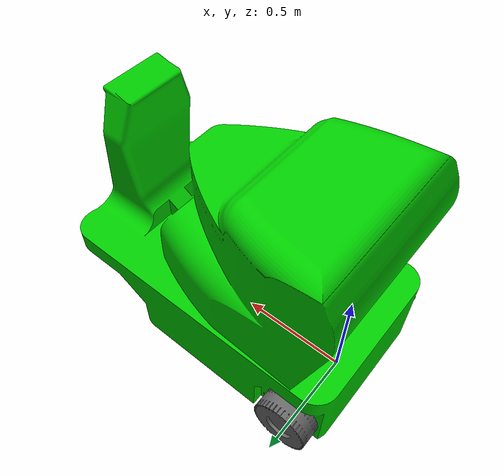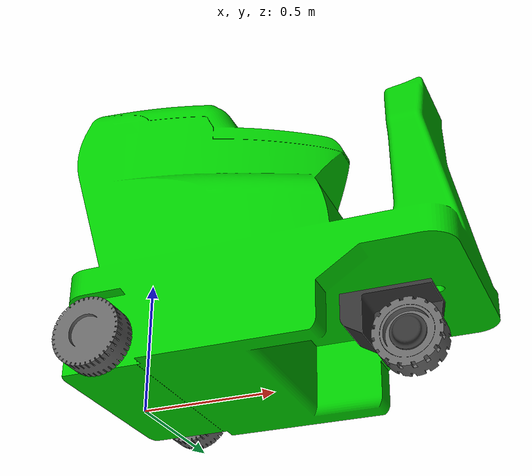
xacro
<?xml version="1.0"?>
<robot name="hakuroukun" xmlns:xacro="http://www.ros.org/wiki/xacro" >

    <!-- Import all robot parts which were xacroed -->
    <xacro:include filename="$(find hakuroukun_description)/urdf/hakuroukun_inertia_box.xacro" />
    <!-- Import Rviz colors -->
    <xacro:include filename="$(find hakuroukun_description)/urdf/colors.xacro" />
    <!-- Import robot properties -->
    <xacro:include filename="$(find hakuroukun_description)/urdf/properties.xacro" />
    <!-- Import wheels and actuator properties -->
    <xacro:include filename="$(find hakuroukun_description)/urdf/actuators_wheels.xacro" />

    <xacro:property name="robot_namespace" value="hakuroukun"/>

    <!-- Base link-->
    <link name="base_link">
    </link>
    <gazebo reference="base_link">
        <material>Gazebo/Red</material>
    </gazebo>

    <!-- rear center-->
    <link name="rear_axis_center">
        <visual>
        <geometry>
            <box size="0.01 0.01 0.01"/>
        </geometry>
        <material name="Red"/>
        </visual>
    </link>
    <gazebo reference="rear_axis_center">
        <material>Gazebo/Red</material>
    </gazebo>
    <joint name="base_link_to_rear_axis_center" type="fixed">
        <parent link="base_link" />
        <child link="rear_axis_center" />
        <origin xyz="0.0 0.0 ${radius}" />
    </joint>

    <!-- Robot Frame-->
    <link name="robot_frame">
        <visual>
            <geometry>
                <mesh filename="package://hakuroukun_description/meshes/base_link.stl" scale="0.001 0.001 0.001"/>
            </geometry>
            <origin rpy="0 0 0" xyz="0 0 0" />
            <material name="Green"/>
        </visual>

        <collision>
            <geometry>
                <mesh filename="package://hakuroukun_description/meshes/base_link.stl" scale="0.001 0.001 0.001"/>
            </geometry>
            <origin rpy="0 0 0" xyz="0 0 0"/>
        </collision>

        <xacro:inertial_box mass="${robot_mass}" x="${robot_length}" y="${robot_width}" z="${robot_height}" />
    </link>

    <joint name="base_link_to_robot_frame" type="fixed">
        <parent link="rear_axis_center" />
        <child link="robot_frame" />
        <origin xyz="${base_link_to_robot_frame_X} ${base_link_to_robot_frame_Y} ${base_link_to_robot_frame_Z}" />
    </joint>

<!-- ///////////////////////////////////////// STEERING //////////////////////////////////// -->
    <xacro:steering_continuous name="front_wheel_shaft"
        parent_link="rear_axis_center"
        mass="${mass_steering_unit}"
        size_x="${steering_X}"  size_y="${steering_Y}" size_z="${steering_Z}"
        x="${rear_axis_center_to_steering_center}" y="-0.01" z="0.0"
        file_name="package://hakuroukun_description/meshes/steering.stl" />

<!-- ///////////////////////////////////////// WHEELS //////////////////////////////////// -->

    <xacro:wheel_front name="front_wheel"
        parent_link="front_wheel_shaft"
        mass="${mass_wheel}"
        radius="${radius}"
        thickness="${thickness}"
        x="0.0" y="0.0" z="0.0"
        mu1="200" mu2="100"
        kp="10000000" kd="40"
        file_name="package://hakuroukun_description/meshes/front_wheel.stl" />

    <xacro:wheel name="rear_left_wheel"
        parent_link="rear_axis_center"
        mass="${mass_wheel}"
        radius="${radius}"
        thickness="${thickness}"
        x="0.0" y="0.4" z="0.0"
        mu1="200" mu2="100"
        kp="10000000" kd="40"
        file_name="package://hakuroukun_description/meshes/rear_left_wheel.stl" />

    <xacro:wheel name="rear_right_wheel"
        parent_link="rear_axis_center"
        mass="${mass_wheel}"
        radius="${radius}"
        thickness="${thickness}"
        x="0.0" y="-0.4" z="0.0"
        mu1="200" mu2="100"
        kp="10000000" kd="40"
        file_name="package://hakuroukun_description/meshes/rear_right_wheel.stl" />

<!-- ////////////////////////////// GAZEBO ROS PLUGIN //////////////////////////////////// -->

    <gazebo>
        <plugin name="gazebo_ros_control" filename="libgazebo_ros_control.so">
            <robotNamespace>hakuroukun</robotNamespace>
            <robotSimType>gazebo_ros_control/DefaultRobotHWSim</robotSimType>
            <legacyModeNS>false</legacyModeNS>
        </plugin>
    </gazebo>

</robot>

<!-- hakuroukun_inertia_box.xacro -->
<?xacro version="1.0"?>
<robot xmlns:xacro="http://www.ros.org/wiki/xacro" name="hakuroukun">

<!-- //////////////////////////// INERTIA DEFINITIONS //////////////////////////// -->
<!-- based on the inertia list from wikipedia -->
  <xacro:macro name="inertial_cylinder_x" params="mass radius height">
    <inertial>
      <mass value="${mass}" />
      <inertia ixx="${(mass/2)*radius*radius}" ixy="0.0" ixz="0.0" iyy="${(mass/12)*(3*radius*radius+height*height)}" iyz="0.0" izz="${(mass/12)*(3*radius*radius+height*height)}" />
    </inertial>
  </xacro:macro>

  <xacro:macro name="inertial_cylinder_y" params="mass radius height">
    <inertial>
      <mass value="${mass}" />
      <inertia ixx="${(mass/12)*(3*radius*radius+height*height)}" ixy="0.0" ixz="0.0" iyy="${(mass/2)*radius*radius}" iyz="0.0" izz="${(mass/12)*(3*radius*radius+height*height)}" />
    </inertial>
  </xacro:macro>

  <xacro:macro name="inertial_cylinder_z" params="mass radius height">
    <inertial>
      <mass value="${mass}" />
      <inertia ixx="${(mass/12)*(3*radius*radius+height*height)}" ixy="0.0" ixz="0.0" iyy="${(mass/12)*(3*radius*radius+height*height)}" iyz="0.0" izz="${(mass/2)*radius*radius}" />
    </inertial>
  </xacro:macro>

  <xacro:macro name="inertial_box" params="mass x y z">
    <inertial>
      <mass value="${mass}" />
      <inertia ixx="${(mass/12)*(y*y+z*z)}" ixy="0.0" ixz="0.0" iyy="${(mass/12)*(x*x+z*z)}" iyz="0.0" izz="${(mass/12)*(y*y+x*x)}" />
    </inertial>
  </xacro:macro>

  <!-- //////////////////////////// Robot xacros //////////////////////////// -->

  <xacro:macro name="default_box" params="parent child_name mass sizex sizey sizez ox oy oz roll pitch yaw color">
    <link name="${child_name}" >
      <visual>
        <geometry>
          <box size="${sizex} ${sizey} ${sizez}" />
        </geometry>
        <origin rpy="${roll} ${pitch} ${yaw}" />
        <material name="${color}" />
      </visual>
      <xacro:inertial_box mass="${mass}" x="${sizex}" y="${sizey}" z="${sizez}" />
    </link>
    <gazebo reference="${child_name}" >
      <material>Gazebo/${color}</material>
    </gazebo>
    <joint name="${parent}_to_${child_name}" type="fixed">
      <parent link="${parent}" />
      <child link="${child_name}" />
      <origin xyz="${ox} ${oy} ${oz}" />
    </joint>
  </xacro:macro>

  <xacro:macro name="default_zylinder_in_X" params="parent child_name mass length radius ox oy oz roll pitch yaw color">
    <link name="${child_name}" >
      <visual>
        <geometry>
          <cylinder length="${length}" radius="${radius}" />
        </geometry>
        <origin rpy="${roll} ${pitch} ${yaw}" />
        <material name="${color}" />
      </visual>
      <xacro:inertial_zylinder_x mass="${mass}" radius="${radius}" height="${length}" />
    </link>
    <gazebo reference="${child_name}" >
      <material>Gazebo/${color}</material>
    </gazebo>
    <joint name="${parent}_to_${child_name}" type="fixed">
      <parent link="${parent}" />
      <child link="${child_name}" />
      <origin xyz="${ox} ${oy} ${oz}" />
    </joint>
  </xacro:macro>

  <xacro:macro name="default_zylinder_in_Y" params="parent child_name mass length radius ox oy oz roll pitch yaw color">
    <link name="${child_name}" >
      <visual>
        <geometry>
          <cylinder length="${length}" radius="${radius}" />
        </geometry>
        <origin rpy="${roll} ${pitch} ${yaw}" />
        <material name="${color}" />
      </visual>
      <xacro:inertial_zylinder_y mass="${mass}" radius="${radius}" height="${length}" />
    </link>
    <gazebo reference="${child_name}" >
      <material>Gazebo/${color}</material>
    </gazebo>
    <joint name="${parent}_to_${child_name}" type="fixed">
      <parent link="${parent}" />
      <child link="${child_name}" />
      <origin xyz="${ox} ${oy} ${oz}" />
    </joint>
  </xacro:macro>

  <xacro:macro name="default_zylinder_in_Z" params="parent child_name mass length radius ox oy oz roll pitch yaw color">
    <link name="${child_name}" >
      <visual>
        <geometry>
          <cylinder length="${length}" radius="${radius}" />
        </geometry>
        <origin rpy="${roll} ${pitch} ${yaw}" />
        <material name="${color}" />
      </visual>
      <xacro:inertial_zylinder_z mass="${mass}" radius="${radius}" height="${length}" />
    </link>
    <gazebo reference="${child_name}" >
      <material>Gazebo/${color}</material>
    </gazebo>
    <joint name="${parent}_to_${child_name}" type="fixed">
      <parent link="${parent}" />
      <child link="${child_name}" />
      <origin xyz="${ox} ${oy} ${oz}" />
    </joint>
  </xacro:macro>

  <!-- //////////////////////////// Robot xacros with collision //////////////////////////// -->

  <xacro:macro name="default_box_with_collision" params="parent child_name mass sizex sizey sizez ox oy oz roll pitch yaw color">
    <link name="${child_name}" >
      <visual>
        <geometry>
          <box size="${sizex} ${sizey} ${sizez}" />
        </geometry>
        <origin rpy="${roll} ${pitch} ${yaw}" />
        <material name="${color}" />
      </visual>
      <collision>
        <geometry>
          <box size="${sizex} ${sizey} ${sizez}" />
        </geometry>
        <origin rpy="${roll} ${pitch} ${yaw}" />
      </collision>
      <xacro:inertial_box mass="${mass}" x="${sizex}" y="${sizey}" z="${sizez}" />
    </link>
    <gazebo reference="${child_name}" >
      <material>Gazebo/${color}</material>
    </gazebo>
    <joint name="${parent}_to_${child_name}" type="fixed">
      <parent link="${parent}" />
      <child link="${child_name}" />
      <origin xyz="${ox} ${oy} ${oz}" />
    </joint>
  </xacro:macro>

  <xacro:macro name="default_zylinder_in_X_with_collision" params="parent child_name mass length radius ox oy oz roll pitch yaw color">
    <link name="${child_name}" >
      <visual>
        <geometry>
          <cylinder length="${length}" radius="${radius}" />
        </geometry>
        <origin rpy="${roll} ${pitch} ${yaw}" />
        <material name="${color}" />
      </visual>
      <collision>
        <geometry>
          <cylinder length="${length}" radius="${radius}" />
        </geometry>
        <origin rpy="${roll} ${pitch} ${yaw}" />
      </collision>
      <xacro:inertial_zylinder_x mass="${mass}" radius="${radius}" height="${length}" />
    </link>
    <gazebo reference="${child_name}" >
      <material>Gazebo/${color}</material>
    </gazebo>
    <joint name="${parent}_to_${child_name}" type="fixed">
      <parent link="${parent}" />
      <child link="${child_name}" />
      <origin xyz="${ox} ${oy} ${oz}" />
    </joint>
  </xacro:macro>

  <xacro:macro name="default_zylinder_in_Y_with_collision" params="parent child_name mass length radius ox oy oz roll pitch yaw color">
    <link name="${child_name}" >
      <visual>
        <geometry>
          <cylinder length="${length}" radius="${radius}" />
        </geometry>
        <origin rpy="${roll} ${pitch} ${yaw}" />
        <material name="${color}" />
      </visual>
      <collision>
        <geometry>
          <cylinder length="${length}" radius="${radius}" />
        </geometry>
        <origin rpy="${roll} ${pitch} ${yaw}" />
      </collision>
      <xacro:inertial_zylinder_y mass="${mass}" radius="${radius}" height="${length}" />
    </link>
    <gazebo reference="${child_name}" >
      <material>Gazebo/${color}</material>
    </gazebo>
    <joint name="${parent}_to_${child_name}" type="fixed">
      <parent link="${parent}" />
      <child link="${child_name}" />
      <origin xyz="${ox} ${oy} ${oz}" />
    </joint>
  </xacro:macro>

  <xacro:macro name="default_zylinder_in_Z_with_collision" params="parent child_name mass length radius ox oy oz roll pitch yaw color">
    <link name="${child_name}" >
      <visual>
        <geometry>
          <cylinder length="${length}" radius="${radius}" />
        </geometry>
        <origin rpy="${roll} ${pitch} ${yaw}" />
        <material name="${color}" />
      </visual>
      <collision>
        <geometry>
          <cylinder length="${length}" radius="${radius}" />
        </geometry>
        <origin rpy="${roll} ${pitch} ${yaw}" />
      </collision>
      <xacro:inertial_zylinder_z mass="${mass}" radius="${radius}" height="${length}" />
    </link>
    <gazebo reference="${child_name}" >
      <material>Gazebo/${color}</material>
    </gazebo>
    <joint name="${parent}_to_${child_name}" type="fixed">
      <parent link="${parent}" />
      <child link="${child_name}" />
      <origin xyz="${ox} ${oy} ${oz}" />
    </joint>
  </xacro:macro>

</robot>

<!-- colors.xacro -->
<robot name="hakuroukun" xmlns:xacr="http://ros.org/wiki/xacro">

    <material name="Black">
        <color rgba="0.0 0.0 0.0 1.0"/>
    </material>

    <material name="Blue">
        <color rgba="0.0 0.0 0.8 1.0"/>
    </material>

    <material name="Green">
        <color rgba="0.0 0.8 0.0 1.0"/>
    </material>

    <material name="Yellow">
        <color rgba="1 1 0 1"/>
    </material>

    <material name="Grey">
        <color rgba="0.2 0.2 0.2 1.0"/>
    </material>

    <material name="WhiteGlow">
        <color rgba="0.75 0.75 0.75 1"/>
    </material>

    <material name="DarkGrey">
        <color rgba="0.41 0.41 0.41 1"/>
    </material>

    <material name="Orange">
        <color rgba="${255/255} ${108/255} ${10/255} 1.0"/>
    </material>

    <material name="Brown">
        <color rgba="${222/255} ${207/255} ${195/255} 1.0"/>
    </material>

    <material name="Red">
        <color rgba="0.8 0.0 0.0 1.0"/>
    </material>

    <material name="White">
        <color rgba="1.0 1.0 1.0 1.0"/>
    </material>

</robot>

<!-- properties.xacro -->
<robot name="musashi_robot" xmlns:xacro="http://ros.org/wiki/xacro">

  <!-- /////////////////// Robot Main /////////////////// -->
  <xacro:property name="robot_length" value="1.430" />
  <xacro:property name="robot_width" value="0.810" />
  <xacro:property name="robot_height" value="1.070" />
  <xacro:property name="robot_mass" value="304" />

  <!-- /////////////////// Base link to Robot frame /////////////////// -->
  <xacro:property name="base_link_to_robot_frame_X" value="0.550" />
  <xacro:property name="base_link_to_robot_frame_Y" value="0.0" />
  <xacro:property name="base_link_to_robot_frame_Z" value="0.440" />

  <!-- /////////////////// Steering Unit /////////////////// -->
  <xacro:property name="rear_axis_center_to_steering_center" value="1.0" /> <!-- approx. value -->
  <xacro:property name="steering_X" value="0.3" />
  <xacro:property name="steering_Y" value="0.2" />
  <xacro:property name="steering_Z" value="0.2" />
  <xacro:property name="mass_steering_unit" value="4" />
  <xacro:property name="upper_limit" value="1.5708" />
  <xacro:property name="lower_limit" value="-1.5708" />

  <!-- /////////////////// front wheels /////////////////// -->
  <xacro:property name="thickness" value="0.1" />
  <xacro:property name="radius" value="0.125" />
  <xacro:property name="mass_wheel" value="3.803" />

    <!-- /////////////////// rear wheels /////////////////// -->
  <xacro:property name="rear_thickness" value="0.499" />
  <xacro:property name="rear_radius" value="0.125" />
  <xacro:property name="rear_mass_wheel" value="17.606" />
  <xacro:property name="imu_update_rate" value="40.0" />
  <xacro:property name="imu_mass" value="0.05" />
  <xacro:property name="imu_noise" value="0.01" />

  <xacro:property name="gps_update_rate" value="40.0" />
  <xacro:property name="gps_mass" value="0.05" />
  <xacro:property name="gps_noise" value="0.01" />
  <xacro:property name="gps_latitude" value="34.70242845166667" />
  <xacro:property name="gps_longitude" value="137.408935105" />

  <xacro:property name="lidar_update_rate" value="15" />			<!-- Hz -->
  <xacro:property name="lidar_mass" value="0.19" />
  <xacro:property name="lidar_length" value="0.041" />
  <xacro:property name="lidar_radius" value="0.038" />
  <xacro:property name="lidar_min_range" value="0.2" />
  <xacro:property name="lidar_max_range" value="25.0" />
  <xacro:property name="lidar_stdv" value="0.01" />
  <xacro:property name="lidar_range_resolution" value="0.01" />
  <xacro:property name="lidar_min_angle" value="${-2*pi}" />
  <xacro:property name="lidar_max_angle" value="${2*pi}" />
</robot>

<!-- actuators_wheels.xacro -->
<robot xmlns:xacro="http://www.ros.org/wiki/xacro" name="hakuroukun">

<!-- ///////////////////////////////////////// STEERING //////////////////////////////////// -->

    <!-- CONTINOUS -->
    <xacro:macro name="steering_continuous" params="name parent_link mass size_x size_y size_z x y z file_name">
        <link name="${name}">
            <visual>
                <geometry>
                    <mesh filename="${file_name}" scale="0.001 0.001 0.001"/>
                </geometry>
                <origin xyz="0.0 0.0 0.0" rpy="0.0 0.0 0.0"/>
                <material name="Grey"/>
            </visual>

            <collision>
                <geometry>
                    <mesh filename="${file_name}" scale="0.001 0.001 0.001"/>
                </geometry>
                <origin xyz="0.0 0.0 0.0" rpy="0.0 0.0 0.0"/>
            </collision>

            <xacro:inertial_box mass="${mass}" x="${size_x}" y="${size_y}" z="${size_z}" />
        </link>
        <joint name="${parent_link}_to_${name}" type="continuous">
            <parent link="${parent_link}"/>
            <child link="${name}"/>
            <origin xyz="${x} ${y} ${z}"/>
            <axis xyz="0 0 1"/>
        </joint>

        <transmission name="${name}_transmission">
            <type>transmission_interface/SimpleTransmission</type>

            <actuator name="${name}_motor" >
                <mechanicalReduction>1.0</mechanicalReduction>
                <hardwareInterface>hardware_interface/PositionJointInterface</hardwareInterface>
            </actuator>

            <joint name="${parent_link}_to_${name}" type="continuous">
                <hardwareInterface>hardware_interface/PositionJointInterface</hardwareInterface>
            </joint>
        </transmission>

        <gazebo reference="${name}">
            <material>Gazebo/Grey</material>
        </gazebo>

    </xacro:macro>

    <!-- REVOLUTE -->

    <xacro:macro name="steering_revolute" params="name parent_link mass size_x size_y size_z x y z upper_limit lower_limit file_name">
        <link name="${name}">
            <visual>
                <geometry>
                    <mesh filename="${file_name}" scale="0.001 0.001 0.001"/>
                </geometry>
                <origin xyz="0.0 0.0 0.0" rpy="0.0 0.0 0.0"/>
                <material name="Grey"/>
            </visual>

            <collision>
                <geometry>
                    <mesh filename="${file_name}" scale="0.001 0.001 0.001"/>
                </geometry>
                <origin xyz="0.0 0.0 0.0" rpy="0.0 0.0 0.0"/>
            </collision>

            <xacro:inertial_box mass="${mass}" x="${size_x}" y="${size_y}" z="${size_z}" />
        </link>

        <joint name="${parent_link}_to_${name}" type="revolute">
            <parent link="${parent_link}"/>
            <child link="${name}"/>
            <origin xyz="${x} ${y} ${z}"/>
            <axis xyz="0 0 1"/>
            <limit lower="${lower_limit}" upper="${upper_limit}" effort="10" velocity="10"/>
        </joint>

        <transmission name="${name}_transmission">
            <type>transmission_interface/SimpleTransmission</type>

            <actuator name="${name}_motor" >
                <mechanicalReduction>1.0</mechanicalReduction>
                <hardwareInterface>hardware_interface/PositionJointInterface</hardwareInterface>
            </actuator>

            <joint name="${parent_link}_to_${name}" type="revolute">
                <hardwareInterface>hardware_interface/PositionJointInterface</hardwareInterface>
            </joint>
        </transmission>

        <gazebo reference="${name}">
            <material>Gazebo/Grey</material>
        </gazebo>
    </xacro:macro>

<!-- ///////////////////////////////////////// WHEELS //////////////////////////////////// -->

    <xacro:macro name="wheel" params="name parent_link mass radius thickness x y z mu1 mu2 kp kd file_name">
        <link name="${name}" >
            <visual>
                <geometry>
                    <mesh filename="${file_name}" scale="0.001 0.001 0.001"/>
                </geometry>
                <origin xyz="0.0 0.0 0.0" rpy="0.0 0.0 0.0"/>
                <material name="DarkGrey"/>
            </visual>

            <collision>
                <geometry>
                    <mesh filename="${file_name}" scale="0.001 0.001 0.001"/>
                </geometry>
                <origin xyz="0.0 0.0 0.0" rpy="0.0 0.0 0.0"/>
            </collision>

            <xacro:inertial_cylinder_y mass="${mass}" radius="${radius}" height="${thickness}" />
        </link>

        <gazebo reference="${name}" >
            <mu1 value="${mu1}"/>
            <mu2 value="${mu2}"/>
            <kp value="${kp}" />
            <kd value="${kd}" />
        </gazebo>

        <joint name="${parent_link}_to_${name}" type="continuous">
            <parent link="${parent_link}"/>
            <child link="${name}"/>
            <axis xyz="0 1 0" />
            <origin xyz="${x} ${y} ${z}" />
        </joint>

        <transmission name="${name}_transmission">
            <type>transmission_interface/SimpleTransmission</type>

            <joint name="${parent_link}_to_${name}">
                <hardwareInterface>hardware_interface/VelocityJointInterface</hardwareInterface>
            </joint>

            <actuator name="${name}_motor">
                <mechanicalReduction>1.0</mechanicalReduction>
                <hardwareInterface>hardware_interface/VelocityJointInterface</hardwareInterface>
            </actuator>

        </transmission>

        <gazebo reference="${name}">
            <material>Gazebo/DarkGrey</material>
        </gazebo>

    </xacro:macro>

    <xacro:macro name="wheel_front" params="name parent_link mass radius thickness x y z mu1 mu2 kp kd file_name">
        <link name="${name}" >
            <visual>
                <geometry>
                    <mesh filename="${file_name}" scale="0.001 0.001 0.001"/>
                </geometry>
                <origin xyz="0.0 0.0 0.0" rpy="0.0 0.0 0.0"/>
                <material name="DarkGrey"/>
            </visual>

            <collision>
                <geometry>
                    <mesh filename="${file_name}" scale="0.001 0.001 0.001"/>
                </geometry>
                <origin xyz="0.0 0.0 0.0" rpy="0.0 0.0 0.0"/>
            </collision>

            <xacro:inertial_cylinder_y mass="${mass}" radius="${radius}" height="${thickness}" />
        </link>

        <gazebo reference="${name}" >
            <mu1 value="${mu1}"/>
            <mu2 value="${mu2}"/>
            <kp value="${kp}" />
            <kd value="${kd}" />
        </gazebo>

        <joint name="${parent_link}_to_${name}" type="continuous">
            <parent link="${parent_link}"/>
            <child link="${name}"/>
            <axis xyz="0 1 0" />
            <origin xyz="${x} ${y} ${z}" />
        </joint>

        <transmission name="${name}_transmission">
            <type>transmission_interface/SimpleTransmission</type>

            <joint name="${parent_link}_to_${name}">
                <hardwareInterface>hardware_interface/VelocityJointInterface</hardwareInterface>
            </joint>

            <actuator name="${name}_motor">
                <mechanicalReduction>1.0</mechanicalReduction>
                <hardwareInterface>hardware_interface/VelocityJointInterface</hardwareInterface>
            </actuator>

        </transmission>

        <gazebo reference="${name}">
            <material>Gazebo/DarkGrey</material>
        </gazebo>

    </xacro:macro>

    <xacro:macro name="axis_and_wheel" params="name parent_link mass radius thickness x y z mu1 mu2 kp kd file_name">
        <link name="${name}" >
            <visual>
                <geometry>
                    <mesh filename="${file_name}" scale="0.001 0.001 0.001"/>
                </geometry>
                <origin xyz="0.0 0.0 0.0" rpy="0.0 0.0 0.0"/>
                <material name="DarkGrey"/>
            </visual>

            <collision>
                <geometry>
                    <mesh filename="${file_name}" scale="0.001 0.001 0.001"/>
                </geometry>
                <origin xyz="0.0 0.0 0.0" rpy="0.0 0.0 0.0"/>
            </collision>

            <xacro:inertial_cylinder_y mass="${mass}" radius="${radius}" height="${thickness}" />
        </link>

        <gazebo reference="${name}" >
            <mu1 value="${mu1}"/>
            <mu2 value="${mu2}"/>
            <kp value="${kp}" />
            <kd value="${kd}" />
        </gazebo>

        <joint name="${parent_link}_to_${name}" type="continuous">
            <parent link="${parent_link}"/>
            <child link="${name}"/>
            <axis xyz="0 1 0" />
            <origin xyz="${x} ${y} ${z}" />
        </joint>

        <gazebo reference="${name}">
            <material>Gazebo/DarkGrey</material>
        </gazebo>

    </xacro:macro>

</robot>
